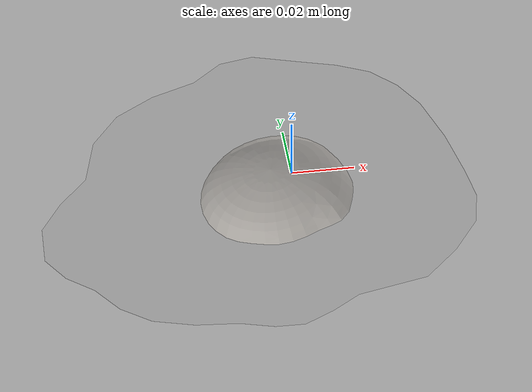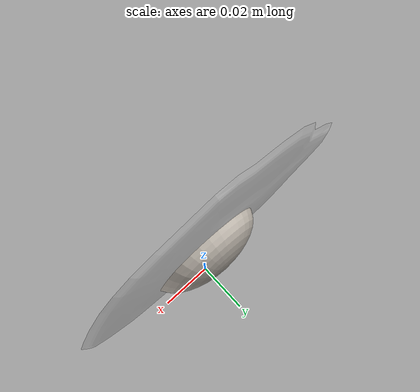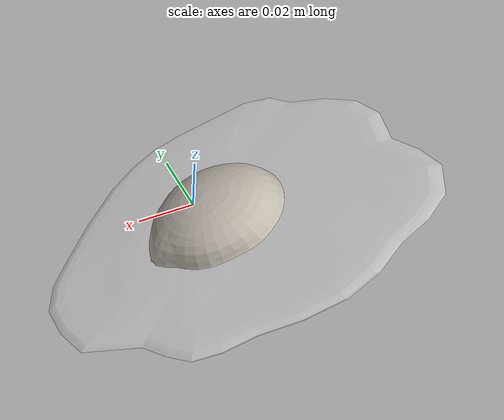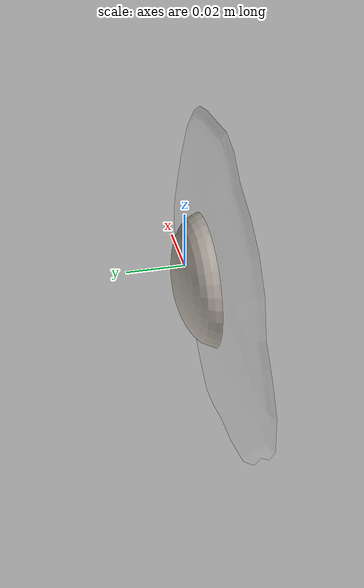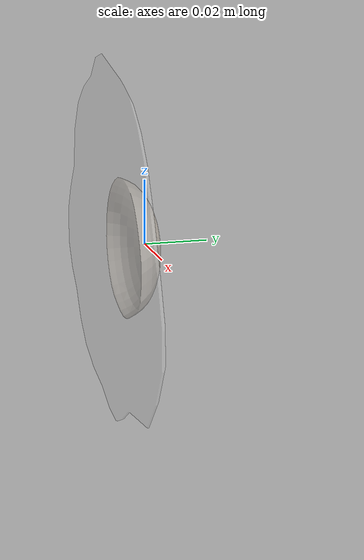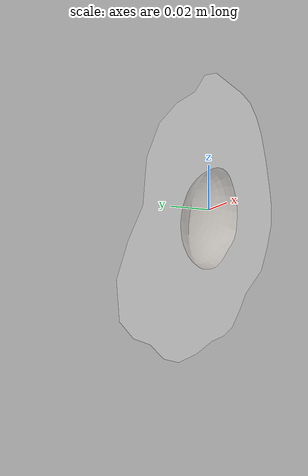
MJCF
<mujoco model="Egg_Cracked_17">
  <compiler autolimits="true" boundmass="0.01" angle="radian"/>
  <default>
    <default class="/">
      <default class="__VISUAL_MJT__">
        <geom contype="0" conaffinity="0" group="0"/>
      </default>
      <default class="__STRUCTURAL_MJT__">
        <geom contype="8" conaffinity="15" group="4" friction="0.90000000000000002 0.90000000000000002 0.001" solref="0.025000000000000001 1" solimp="0.998 0.998 0.001"/>
      </default>
      <default class="__DYNAMIC_MJT__">
        <geom contype="1" conaffinity="15" group="4" friction="0.90000000000000002 0.90000000000000002 0.001" solref="0.025000000000000001 1" solimp="0.998 0.998 0.001"/>
      </default>
    </default>
  </default>
  <asset>
    <texture name="Fried_Egg_White_Uncooked_Mat" type="2d" file="Fried_Egg_AlbedoTransparency.png"/>
    <material name="material_Fried_Egg_White_Uncooked_Mat" class="/" texture="Fried_Egg_White_Uncooked_Mat" specular="0.5" shininess="0.5" rgba="1 1 1 0.5"/>
    <texture name="Fried_Egg_Yolk_Mat" type="2d" file="Fried_Egg_AlbedoTransparency.png"/>
    <material name="material_Fried_Egg_Yolk_Mat" class="/" texture="Fried_Egg_Yolk_Mat" specular="0.5" shininess="0.5" rgba="1 1 1 1"/>
    <mesh name="Egg_Cracked_17_fried_egg_16_0" class="/" file="Egg_Cracked_17_fried_egg_16/Egg_Cracked_17_fried_egg_16_0.obj" scale="1 1 1"/>
    <mesh name="Egg_Cracked_17_fried_egg_16_1" class="/" file="Egg_Cracked_17_fried_egg_16/Egg_Cracked_17_fried_egg_16_1.obj" scale="1 1 1"/>
  </asset>
  <worldbody>
    <body name="Egg_Cracked_17">
      <joint name="Egg_Cracked_17_free" class="/" type="free" pos="0 0 0" axis="0 0 1" stiffness="0" range="0 0" armature="0" damping="0.10000000000000001" frictionloss="0"/>
      <body name="Egg_Cracked_17_fried_egg_16" pos="-0.0061599999999999997 -0.01023 -0.0022699999999999999" quat="1 0 0 0">
        <geom name="Egg_Cracked_17_fried_egg_16_0" class="__VISUAL_MJT__" type="mesh" material="material_Fried_Egg_White_Uncooked_Mat" shellinertia="false" mesh="Egg_Cracked_17_fried_egg_16_0"/>
        <geom name="Egg_Cracked_17_fried_egg_16_1" class="__VISUAL_MJT__" type="mesh" material="material_Fried_Egg_Yolk_Mat" shellinertia="false" mesh="Egg_Cracked_17_fried_egg_16_1"/>
        <geom name="Egg_Cracked_17_PrimitiveCollider_0" class="__DYNAMIC_MJT__" type="box" size="0.069390073418617249 0.010231256484985352 0.05766034871339798" rgba="0 1 0 1" pos="-0.0061609596014022827 0.010231256484985352 0.0022709295153617859" quat="1 0 0 0"/>
      </body>
    </body>
  </worldbody>
</mujoco>
